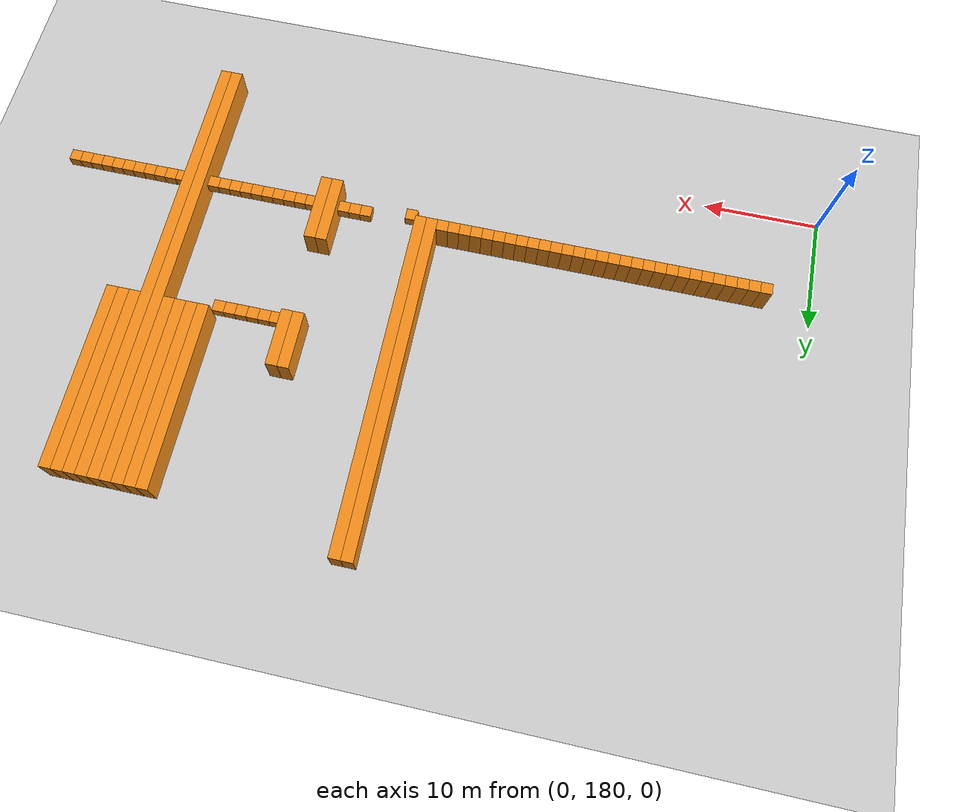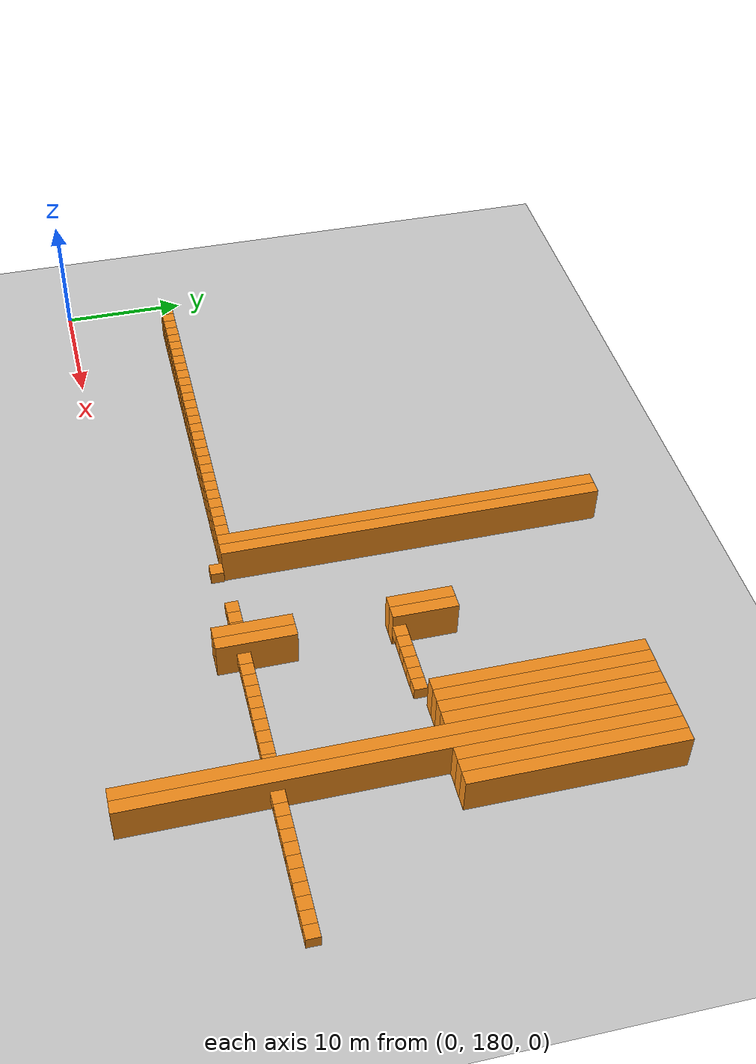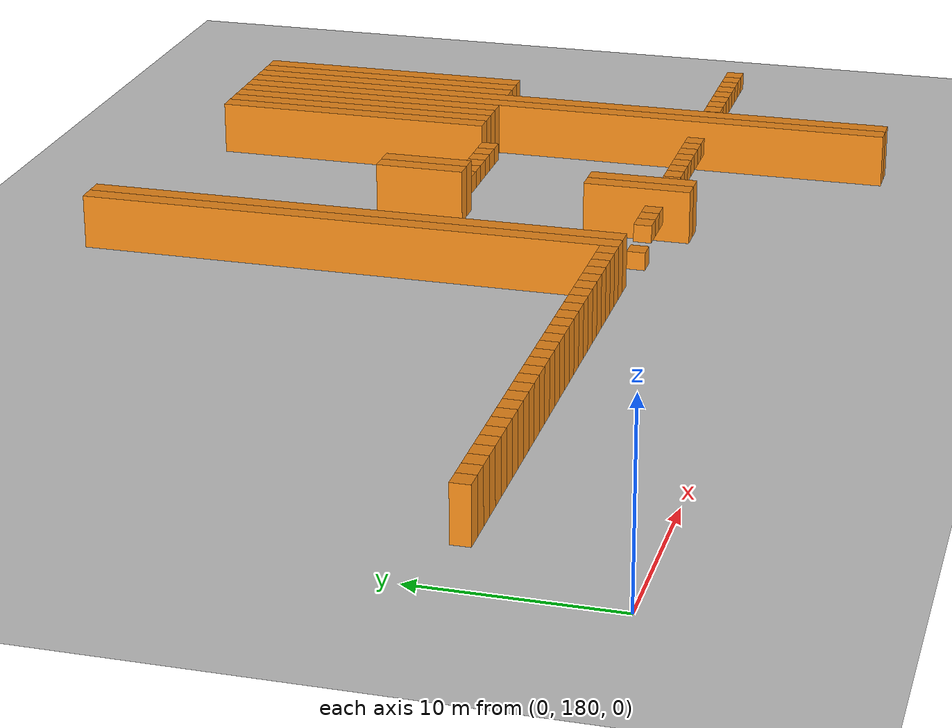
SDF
<sdf version="1.6">
 <world name="default">
  <include><uri>model://ground_plane</uri></include>
  <model name="unit_box_014">
   <pose>4.50   188.50     1.50 0 0 0</pose>
   <static>1</static>
   <link name="link">
    <inertial>
     <mass>5000</mass>
     <inertia><ixx>200</ixx><ixy>0</ixy><ixz>0</ixz><iyy>200</iyy><iyz>0</iyz><izz>200</izz></inertia>
    </inertial>
    <collision name="collision"><geometry><box><size>1 1 3</size></box></geometry></collision>
    <visual name="visual">
     <geometry><box><size>1 1 3</size></box></geometry>
     <material>
      <script><name>Gazebo/Orange</name><uri>file://media/materials/scripts/gazebo.material</uri></script>
     </material>
    </visual>
   </link>
  </model>
  <model name="unit_box_027">
   <pose>5.50   188.50     1.50 0 0 0</pose>
   <static>1</static>
   <link name="link">
    <inertial>
     <mass>5000</mass>
     <inertia><ixx>200</ixx><ixy>0</ixy><ixz>0</ixz><iyy>200</iyy><iyz>0</iyz><izz>200</izz></inertia>
    </inertial>
    <collision name="collision"><geometry><box><size>1 1 3</size></box></geometry></collision>
    <visual name="visual">
     <geometry><box><size>1 1 3</size></box></geometry>
     <material>
      <script><name>Gazebo/Orange</name><uri>file://media/materials/scripts/gazebo.material</uri></script>
     </material>
    </visual>
   </link>
  </model>
  <model name="unit_box_040">
   <pose>6.50   188.50     1.50 0 0 0</pose>
   <static>1</static>
   <link name="link">
    <inertial>
     <mass>5000</mass>
     <inertia><ixx>200</ixx><ixy>0</ixy><ixz>0</ixz><iyy>200</iyy><iyz>0</iyz><izz>200</izz></inertia>
    </inertial>
    <collision name="collision"><geometry><box><size>1 1 3</size></box></geometry></collision>
    <visual name="visual">
     <geometry><box><size>1 1 3</size></box></geometry>
     <material>
      <script><name>Gazebo/Orange</name><uri>file://media/materials/scripts/gazebo.material</uri></script>
     </material>
    </visual>
   </link>
  </model>
  <model name="unit_box_053">
   <pose>7.50   188.50     1.50 0 0 0</pose>
   <static>1</static>
   <link name="link">
    <inertial>
     <mass>5000</mass>
     <inertia><ixx>200</ixx><ixy>0</ixy><ixz>0</ixz><iyy>200</iyy><iyz>0</iyz><izz>200</izz></inertia>
    </inertial>
    <collision name="collision"><geometry><box><size>1 1 3</size></box></geometry></collision>
    <visual name="visual">
     <geometry><box><size>1 1 3</size></box></geometry>
     <material>
      <script><name>Gazebo/Orange</name><uri>file://media/materials/scripts/gazebo.material</uri></script>
     </material>
    </visual>
   </link>
  </model>
  <model name="unit_box_066">
   <pose>8.50   188.50     1.50 0 0 0</pose>
   <static>1</static>
   <link name="link">
    <inertial>
     <mass>5000</mass>
     <inertia><ixx>200</ixx><ixy>0</ixy><ixz>0</ixz><iyy>200</iyy><iyz>0</iyz><izz>200</izz></inertia>
    </inertial>
    <collision name="collision"><geometry><box><size>1 1 3</size></box></geometry></collision>
    <visual name="visual">
     <geometry><box><size>1 1 3</size></box></geometry>
     <material>
      <script><name>Gazebo/Orange</name><uri>file://media/materials/scripts/gazebo.material</uri></script>
     </material>
    </visual>
   </link>
  </model>
  <model name="unit_box_079">
   <pose>9.50   188.50     1.50 0 0 0</pose>
   <static>1</static>
   <link name="link">
    <inertial>
     <mass>5000</mass>
     <inertia><ixx>200</ixx><ixy>0</ixy><ixz>0</ixz><iyy>200</iyy><iyz>0</iyz><izz>200</izz></inertia>
    </inertial>
    <collision name="collision"><geometry><box><size>1 1 3</size></box></geometry></collision>
    <visual name="visual">
     <geometry><box><size>1 1 3</size></box></geometry>
     <material>
      <script><name>Gazebo/Orange</name><uri>file://media/materials/scripts/gazebo.material</uri></script>
     </material>
    </visual>
   </link>
  </model>
  <model name="unit_box_092">
   <pose>10.50   188.50     1.50 0 0 0</pose>
   <static>1</static>
   <link name="link">
    <inertial>
     <mass>5000</mass>
     <inertia><ixx>200</ixx><ixy>0</ixy><ixz>0</ixz><iyy>200</iyy><iyz>0</iyz><izz>200</izz></inertia>
    </inertial>
    <collision name="collision"><geometry><box><size>1 1 3</size></box></geometry></collision>
    <visual name="visual">
     <geometry><box><size>1 1 3</size></box></geometry>
     <material>
      <script><name>Gazebo/Orange</name><uri>file://media/materials/scripts/gazebo.material</uri></script>
     </material>
    </visual>
   </link>
  </model>
  <model name="unit_box_105">
   <pose>11.50   188.50     1.50 0 0 0</pose>
   <static>1</static>
   <link name="link">
    <inertial>
     <mass>5000</mass>
     <inertia><ixx>200</ixx><ixy>0</ixy><ixz>0</ixz><iyy>200</iyy><iyz>0</iyz><izz>200</izz></inertia>
    </inertial>
    <collision name="collision"><geometry><box><size>1 1 3</size></box></geometry></collision>
    <visual name="visual">
     <geometry><box><size>1 1 3</size></box></geometry>
     <material>
      <script><name>Gazebo/Orange</name><uri>file://media/materials/scripts/gazebo.material</uri></script>
     </material>
    </visual>
   </link>
  </model>
  <model name="unit_box_118">
   <pose>12.50   188.50     1.50 0 0 0</pose>
   <static>1</static>
   <link name="link">
    <inertial>
     <mass>5000</mass>
     <inertia><ixx>200</ixx><ixy>0</ixy><ixz>0</ixz><iyy>200</iyy><iyz>0</iyz><izz>200</izz></inertia>
    </inertial>
    <collision name="collision"><geometry><box><size>1 1 3</size></box></geometry></collision>
    <visual name="visual">
     <geometry><box><size>1 1 3</size></box></geometry>
     <material>
      <script><name>Gazebo/Orange</name><uri>file://media/materials/scripts/gazebo.material</uri></script>
     </material>
    </visual>
   </link>
  </model>
  <model name="unit_box_131">
   <pose>13.50   188.50     1.50 0 0 0</pose>
   <static>1</static>
   <link name="link">
    <inertial>
     <mass>5000</mass>
     <inertia><ixx>200</ixx><ixy>0</ixy><ixz>0</ixz><iyy>200</iyy><iyz>0</iyz><izz>200</izz></inertia>
    </inertial>
    <collision name="collision"><geometry><box><size>1 1 3</size></box></geometry></collision>
    <visual name="visual">
     <geometry><box><size>1 1 3</size></box></geometry>
     <material>
      <script><name>Gazebo/Orange</name><uri>file://media/materials/scripts/gazebo.material</uri></script>
     </material>
    </visual>
   </link>
  </model>
  <model name="unit_box_144">
   <pose>14.50   188.50     1.50 0 0 0</pose>
   <static>1</static>
   <link name="link">
    <inertial>
     <mass>5000</mass>
     <inertia><ixx>200</ixx><ixy>0</ixy><ixz>0</ixz><iyy>200</iyy><iyz>0</iyz><izz>200</izz></inertia>
    </inertial>
    <collision name="collision"><geometry><box><size>1 1 3</size></box></geometry></collision>
    <visual name="visual">
     <geometry><box><size>1 1 3</size></box></geometry>
     <material>
      <script><name>Gazebo/Orange</name><uri>file://media/materials/scripts/gazebo.material</uri></script>
     </material>
    </visual>
   </link>
  </model>
  <model name="unit_box_157">
   <pose>15.50   188.50     1.50 0 0 0</pose>
   <static>1</static>
   <link name="link">
    <inertial>
     <mass>5000</mass>
     <inertia><ixx>200</ixx><ixy>0</ixy><ixz>0</ixz><iyy>200</iyy><iyz>0</iyz><izz>200</izz></inertia>
    </inertial>
    <collision name="collision"><geometry><box><size>1 1 3</size></box></geometry></collision>
    <visual name="visual">
     <geometry><box><size>1 1 3</size></box></geometry>
     <material>
      <script><name>Gazebo/Orange</name><uri>file://media/materials/scripts/gazebo.material</uri></script>
     </material>
    </visual>
   </link>
  </model>
  <model name="unit_box_170">
   <pose>16.50   188.50     1.50 0 0 0</pose>
   <static>1</static>
   <link name="link">
    <inertial>
     <mass>5000</mass>
     <inertia><ixx>200</ixx><ixy>0</ixy><ixz>0</ixz><iyy>200</iyy><iyz>0</iyz><izz>200</izz></inertia>
    </inertial>
    <collision name="collision"><geometry><box><size>1 1 3</size></box></geometry></collision>
    <visual name="visual">
     <geometry><box><size>1 1 3</size></box></geometry>
     <material>
      <script><name>Gazebo/Orange</name><uri>file://media/materials/scripts/gazebo.material</uri></script>
     </material>
    </visual>
   </link>
  </model>
  <model name="unit_box_183">
   <pose>17.50   188.50     1.50 0 0 0</pose>
   <static>1</static>
   <link name="link">
    <inertial>
     <mass>5000</mass>
     <inertia><ixx>200</ixx><ixy>0</ixy><ixz>0</ixz><iyy>200</iyy><iyz>0</iyz><izz>200</izz></inertia>
    </inertial>
    <collision name="collision"><geometry><box><size>1 1 3</size></box></geometry></collision>
    <visual name="visual">
     <geometry><box><size>1 1 3</size></box></geometry>
     <material>
      <script><name>Gazebo/Orange</name><uri>file://media/materials/scripts/gazebo.material</uri></script>
     </material>
    </visual>
   </link>
  </model>
  <model name="unit_box_196">
   <pose>18.50   188.50     1.50 0 0 0</pose>
   <static>1</static>
   <link name="link">
    <inertial>
     <mass>5000</mass>
     <inertia><ixx>200</ixx><ixy>0</ixy><ixz>0</ixz><iyy>200</iyy><iyz>0</iyz><izz>200</izz></inertia>
    </inertial>
    <collision name="collision"><geometry><box><size>1 1 3</size></box></geometry></collision>
    <visual name="visual">
     <geometry><box><size>1 1 3</size></box></geometry>
     <material>
      <script><name>Gazebo/Orange</name><uri>file://media/materials/scripts/gazebo.material</uri></script>
     </material>
    </visual>
   </link>
  </model>
  <model name="unit_box_209">
   <pose>19.50   188.50     1.50 0 0 0</pose>
   <static>1</static>
   <link name="link">
    <inertial>
     <mass>5000</mass>
     <inertia><ixx>200</ixx><ixy>0</ixy><ixz>0</ixz><iyy>200</iyy><iyz>0</iyz><izz>200</izz></inertia>
    </inertial>
    <collision name="collision"><geometry><box><size>1 1 3</size></box></geometry></collision>
    <visual name="visual">
     <geometry><box><size>1 1 3</size></box></geometry>
     <material>
      <script><name>Gazebo/Orange</name><uri>file://media/materials/scripts/gazebo.material</uri></script>
     </material>
    </visual>
   </link>
  </model>
  <model name="unit_box_222">
   <pose>20.50   188.50     1.50 0 0 0</pose>
   <static>1</static>
   <link name="link">
    <inertial>
     <mass>5000</mass>
     <inertia><ixx>200</ixx><ixy>0</ixy><ixz>0</ixz><iyy>200</iyy><iyz>0</iyz><izz>200</izz></inertia>
    </inertial>
    <collision name="collision"><geometry><box><size>1 1 3</size></box></geometry></collision>
    <visual name="visual">
     <geometry><box><size>1 1 3</size></box></geometry>
     <material>
      <script><name>Gazebo/Orange</name><uri>file://media/materials/scripts/gazebo.material</uri></script>
     </material>
    </visual>
   </link>
  </model>
  <model name="unit_box_235">
   <pose>21.50   188.50     1.50 0 0 0</pose>
   <static>1</static>
   <link name="link">
    <inertial>
     <mass>5000</mass>
     <inertia><ixx>200</ixx><ixy>0</ixy><ixz>0</ixz><iyy>200</iyy><iyz>0</iyz><izz>200</izz></inertia>
    </inertial>
    <collision name="collision"><geometry><box><size>1 1 3</size></box></geometry></collision>
    <visual name="visual">
     <geometry><box><size>1 1 3</size></box></geometry>
     <material>
      <script><name>Gazebo/Orange</name><uri>file://media/materials/scripts/gazebo.material</uri></script>
     </material>
    </visual>
   </link>
  </model>
  <model name="unit_box_248">
   <pose>22.50   188.50     1.50 0 0 0</pose>
   <static>1</static>
   <link name="link">
    <inertial>
     <mass>5000</mass>
     <inertia><ixx>200</ixx><ixy>0</ixy><ixz>0</ixz><iyy>200</iyy><iyz>0</iyz><izz>200</izz></inertia>
    </inertial>
    <collision name="collision"><geometry><box><size>1 1 3</size></box></geometry></collision>
    <visual name="visual">
     <geometry><box><size>1 1 3</size></box></geometry>
     <material>
      <script><name>Gazebo/Orange</name><uri>file://media/materials/scripts/gazebo.material</uri></script>
     </material>
    </visual>
   </link>
  </model>
  <model name="unit_box_261">
   <pose>23.50   188.50     1.50 0 0 0</pose>
   <static>1</static>
   <link name="link">
    <inertial>
     <mass>5000</mass>
     <inertia><ixx>200</ixx><ixy>0</ixy><ixz>0</ixz><iyy>200</iyy><iyz>0</iyz><izz>200</izz></inertia>
    </inertial>
    <collision name="collision"><geometry><box><size>1 1 3</size></box></geometry></collision>
    <visual name="visual">
     <geometry><box><size>1 1 3</size></box></geometry>
     <material>
      <script><name>Gazebo/Orange</name><uri>file://media/materials/scripts/gazebo.material</uri></script>
     </material>
    </visual>
   </link>
  </model>
  <model name="unit_box_274">
   <pose>24.50   188.50     1.50 0 0 0</pose>
   <static>1</static>
   <link name="link">
    <inertial>
     <mass>5000</mass>
     <inertia><ixx>200</ixx><ixy>0</ixy><ixz>0</ixz><iyy>200</iyy><iyz>0</iyz><izz>200</izz></inertia>
    </inertial>
    <collision name="collision"><geometry><box><size>1 1 3</size></box></geometry></collision>
    <visual name="visual">
     <geometry><box><size>1 1 3</size></box></geometry>
     <material>
      <script><name>Gazebo/Orange</name><uri>file://media/materials/scripts/gazebo.material</uri></script>
     </material>
    </visual>
   </link>
  </model>
  <model name="unit_box_287">
   <pose>25.50   188.50     1.50 0 0 0</pose>
   <static>1</static>
   <link name="link">
    <inertial>
     <mass>5000</mass>
     <inertia><ixx>200</ixx><ixy>0</ixy><ixz>0</ixz><iyy>200</iyy><iyz>0</iyz><izz>200</izz></inertia>
    </inertial>
    <collision name="collision"><geometry><box><size>1 1 3</size></box></geometry></collision>
    <visual name="visual">
     <geometry><box><size>1 1 3</size></box></geometry>
     <material>
      <script><name>Gazebo/Orange</name><uri>file://media/materials/scripts/gazebo.material</uri></script>
     </material>
    </visual>
   </link>
  </model>
  <model name="unit_box_300">
   <pose>26.50   188.50     1.50 0 0 0</pose>
   <static>1</static>
   <link name="link">
    <inertial>
     <mass>5000</mass>
     <inertia><ixx>200</ixx><ixy>0</ixy><ixz>0</ixz><iyy>200</iyy><iyz>0</iyz><izz>200</izz></inertia>
    </inertial>
    <collision name="collision"><geometry><box><size>1 1 3</size></box></geometry></collision>
    <visual name="visual">
     <geometry><box><size>1 1 3</size></box></geometry>
     <material>
      <script><name>Gazebo/Orange</name><uri>file://media/materials/scripts/gazebo.material</uri></script>
     </material>
    </visual>
   </link>
  </model>
  <model name="unit_box_313">
   <pose>27.50   188.50     1.50 0 0 0</pose>
   <static>1</static>
   <link name="link">
    <inertial>
     <mass>5000</mass>
     <inertia><ixx>200</ixx><ixy>0</ixy><ixz>0</ixz><iyy>200</iyy><iyz>0</iyz><izz>200</izz></inertia>
    </inertial>
    <collision name="collision"><geometry><box><size>1 1 3</size></box></geometry></collision>
    <visual name="visual">
     <geometry><box><size>1 1 3</size></box></geometry>
     <material>
      <script><name>Gazebo/Orange</name><uri>file://media/materials/scripts/gazebo.material</uri></script>
     </material>
    </visual>
   </link>
  </model>
  <model name="unit_box_326">
   <pose>28.50   188.50     1.50 0 0 0</pose>
   <static>1</static>
   <link name="link">
    <inertial>
     <mass>5000</mass>
     <inertia><ixx>200</ixx><ixy>0</ixy><ixz>0</ixz><iyy>200</iyy><iyz>0</iyz><izz>200</izz></inertia>
    </inertial>
    <collision name="collision"><geometry><box><size>1 1 3</size></box></geometry></collision>
    <visual name="visual">
     <geometry><box><size>1 1 3</size></box></geometry>
     <material>
      <script><name>Gazebo/Orange</name><uri>file://media/materials/scripts/gazebo.material</uri></script>
     </material>
    </visual>
   </link>
  </model>
  <model name="unit_box_339">
   <pose>29.50   188.50     1.50 0 0 0</pose>
   <static>1</static>
   <link name="link">
    <inertial>
     <mass>5000</mass>
     <inertia><ixx>200</ixx><ixy>0</ixy><ixz>0</ixz><iyy>200</iyy><iyz>0</iyz><izz>200</izz></inertia>
    </inertial>
    <collision name="collision"><geometry><box><size>1 1 3</size></box></geometry></collision>
    <visual name="visual">
     <geometry><box><size>1 1 3</size></box></geometry>
     <material>
      <script><name>Gazebo/Orange</name><uri>file://media/materials/scripts/gazebo.material</uri></script>
     </material>
    </visual>
   </link>
  </model>
  <model name="unit_box_352">
   <pose>30.50   188.50     1.50 0 0 0</pose>
   <static>1</static>
   <link name="link">
    <inertial>
     <mass>5000</mass>
     <inertia><ixx>200</ixx><ixy>0</ixy><ixz>0</ixz><iyy>200</iyy><iyz>0</iyz><izz>200</izz></inertia>
    </inertial>
    <collision name="collision"><geometry><box><size>1 1 3</size></box></geometry></collision>
    <visual name="visual">
     <geometry><box><size>1 1 3</size></box></geometry>
     <material>
      <script><name>Gazebo/Orange</name><uri>file://media/materials/scripts/gazebo.material</uri></script>
     </material>
    </visual>
   </link>
  </model>
  <model name="unit_box_366">
   <pose>31.50   188.50     1.50 0 0 0</pose>
   <static>1</static>
   <link name="link">
    <inertial>
     <mass>5000</mass>
     <inertia><ixx>200</ixx><ixy>0</ixy><ixz>0</ixz><iyy>200</iyy><iyz>0</iyz><izz>200</izz></inertia>
    </inertial>
    <collision name="collision"><geometry><box><size>1 1 3</size></box></geometry></collision>
    <visual name="visual">
     <geometry><box><size>1 1 3</size></box></geometry>
     <material>
      <script><name>Gazebo/Orange</name><uri>file://media/materials/scripts/gazebo.material</uri></script>
     </material>
    </visual>
   </link>
  </model>
  <model name="unit_box_380">
   <pose>32.50   188.50     1.50 0 0 0</pose>
   <static>1</static>
   <link name="link">
    <inertial>
     <mass>5000</mass>
     <inertia><ixx>200</ixx><ixy>0</ixy><ixz>0</ixz><iyy>200</iyy><iyz>0</iyz><izz>200</izz></inertia>
    </inertial>
    <collision name="collision"><geometry><box><size>1 1 3</size></box></geometry></collision>
    <visual name="visual">
     <geometry><box><size>1 1 3</size></box></geometry>
     <material>
      <script><name>Gazebo/Orange</name><uri>file://media/materials/scripts/gazebo.material</uri></script>
     </material>
    </visual>
   </link>
  </model>
  <model name="unit_box_385">
   <pose>33.50   203.00     1.50 0 0 0</pose>
   <static>1</static>
   <link name="link">
    <inertial>
     <mass>5000</mass>
     <inertia><ixx>200</ixx><ixy>0</ixy><ixz>0</ixz><iyy>200</iyy><iyz>0</iyz><izz>200</izz></inertia>
    </inertial>
    <collision name="collision"><geometry><box><size>1 30 3</size></box></geometry></collision>
    <visual name="visual">
     <geometry><box><size>1 30 3</size></box></geometry>
     <material>
      <script><name>Gazebo/Orange</name><uri>file://media/materials/scripts/gazebo.material</uri></script>
     </material>
    </visual>
   </link>
  </model>
  <model name="unit_box_392">
   <pose>34.50   203.00     1.50 0 0 0</pose>
   <static>1</static>
   <link name="link">
    <inertial>
     <mass>5000</mass>
     <inertia><ixx>200</ixx><ixy>0</ixy><ixz>0</ixz><iyy>200</iyy><iyz>0</iyz><izz>200</izz></inertia>
    </inertial>
    <collision name="collision"><geometry><box><size>1 30 3</size></box></geometry></collision>
    <visual name="visual">
     <geometry><box><size>1 30 3</size></box></geometry>
     <material>
      <script><name>Gazebo/Orange</name><uri>file://media/materials/scripts/gazebo.material</uri></script>
     </material>
    </visual>
   </link>
  </model>
  <model name="unit_box_398">
   <pose>35.50   187.50     1.50 0 0 0</pose>
   <static>1</static>
   <link name="link">
    <inertial>
     <mass>5000</mass>
     <inertia><ixx>200</ixx><ixy>0</ixy><ixz>0</ixz><iyy>200</iyy><iyz>0</iyz><izz>200</izz></inertia>
    </inertial>
    <collision name="collision"><geometry><box><size>1 1 1</size></box></geometry></collision>
    <visual name="visual">
     <geometry><box><size>1 1 1</size></box></geometry>
     <material>
      <script><name>Gazebo/Orange</name><uri>file://media/materials/scripts/gazebo.material</uri></script>
     </material>
    </visual>
   </link>
  </model>
  <model name="unit_box_419">
   <pose>39.50   188.00     1.50 0 0 0</pose>
   <static>1</static>
   <link name="link">
    <inertial>
     <mass>5000</mass>
     <inertia><ixx>200</ixx><ixy>0</ixy><ixz>0</ixz><iyy>200</iyy><iyz>0</iyz><izz>200</izz></inertia>
    </inertial>
    <collision name="collision"><geometry><box><size>1 1 1</size></box></geometry></collision>
    <visual name="visual">
     <geometry><box><size>1 1 1</size></box></geometry>
     <material>
      <script><name>Gazebo/Orange</name><uri>file://media/materials/scripts/gazebo.material</uri></script>
     </material>
    </visual>
   </link>
  </model>
  <model name="unit_box_425">
   <pose>40.50   188.00     1.50 0 0 0</pose>
   <static>1</static>
   <link name="link">
    <inertial>
     <mass>5000</mass>
     <inertia><ixx>200</ixx><ixy>0</ixy><ixz>0</ixz><iyy>200</iyy><iyz>0</iyz><izz>200</izz></inertia>
    </inertial>
    <collision name="collision"><geometry><box><size>1 1 1</size></box></geometry></collision>
    <visual name="visual">
     <geometry><box><size>1 1 1</size></box></geometry>
     <material>
      <script><name>Gazebo/Orange</name><uri>file://media/materials/scripts/gazebo.material</uri></script>
     </material>
    </visual>
   </link>
  </model>
  <model name="unit_box_433">
   <pose>41.50   188.00     1.50 0 0 0</pose>
   <static>1</static>
   <link name="link">
    <inertial>
     <mass>5000</mass>
     <inertia><ixx>200</ixx><ixy>0</ixy><ixz>0</ixz><iyy>200</iyy><iyz>0</iyz><izz>200</izz></inertia>
    </inertial>
    <collision name="collision"><geometry><box><size>1 1 1</size></box></geometry></collision>
    <visual name="visual">
     <geometry><box><size>1 1 1</size></box></geometry>
     <material>
      <script><name>Gazebo/Orange</name><uri>file://media/materials/scripts/gazebo.material</uri></script>
     </material>
    </visual>
   </link>
  </model>
  <model name="unit_box_444">
   <pose>42.50   189.00     1.50 0 0 0</pose>
   <static>1</static>
   <link name="link">
    <inertial>
     <mass>5000</mass>
     <inertia><ixx>200</ixx><ixy>0</ixy><ixz>0</ixz><iyy>200</iyy><iyz>0</iyz><izz>200</izz></inertia>
    </inertial>
    <collision name="collision"><geometry><box><size>1 6 3</size></box></geometry></collision>
    <visual name="visual">
     <geometry><box><size>1 6 3</size></box></geometry>
     <material>
      <script><name>Gazebo/Orange</name><uri>file://media/materials/scripts/gazebo.material</uri></script>
     </material>
    </visual>
   </link>
  </model>
  <model name="unit_box_445">
   <pose>42.50   201.50     1.50 0 0 0</pose>
   <static>1</static>
   <link name="link">
    <inertial>
     <mass>5000</mass>
     <inertia><ixx>200</ixx><ixy>0</ixy><ixz>0</ixz><iyy>200</iyy><iyz>0</iyz><izz>200</izz></inertia>
    </inertial>
    <collision name="collision"><geometry><box><size>1 5 3</size></box></geometry></collision>
    <visual name="visual">
     <geometry><box><size>1 5 3</size></box></geometry>
     <material>
      <script><name>Gazebo/Orange</name><uri>file://media/materials/scripts/gazebo.material</uri></script>
     </material>
    </visual>
   </link>
  </model>
  <model name="unit_box_459">
   <pose>43.50   189.00     1.50 0 0 0</pose>
   <static>1</static>
   <link name="link">
    <inertial>
     <mass>5000</mass>
     <inertia><ixx>200</ixx><ixy>0</ixy><ixz>0</ixz><iyy>200</iyy><iyz>0</iyz><izz>200</izz></inertia>
    </inertial>
    <collision name="collision"><geometry><box><size>1 6 3</size></box></geometry></collision>
    <visual name="visual">
     <geometry><box><size>1 6 3</size></box></geometry>
     <material>
      <script><name>Gazebo/Orange</name><uri>file://media/materials/scripts/gazebo.material</uri></script>
     </material>
    </visual>
   </link>
  </model>
  <model name="unit_box_460">
   <pose>43.50   201.50     1.50 0 0 0</pose>
   <static>1</static>
   <link name="link">
    <inertial>
     <mass>5000</mass>
     <inertia><ixx>200</ixx><ixy>0</ixy><ixz>0</ixz><iyy>200</iyy><iyz>0</iyz><izz>200</izz></inertia>
    </inertial>
    <collision name="collision"><geometry><box><size>1 5 3</size></box></geometry></collision>
    <visual name="visual">
     <geometry><box><size>1 5 3</size></box></geometry>
     <material>
      <script><name>Gazebo/Orange</name><uri>file://media/materials/scripts/gazebo.material</uri></script>
     </material>
    </visual>
   </link>
  </model>
  <model name="unit_box_474">
   <pose>44.50   188.00     1.50 0 0 0</pose>
   <static>1</static>
   <link name="link">
    <inertial>
     <mass>5000</mass>
     <inertia><ixx>200</ixx><ixy>0</ixy><ixz>0</ixz><iyy>200</iyy><iyz>0</iyz><izz>200</izz></inertia>
    </inertial>
    <collision name="collision"><geometry><box><size>1 1 1</size></box></geometry></collision>
    <visual name="visual">
     <geometry><box><size>1 1 1</size></box></geometry>
     <material>
      <script><name>Gazebo/Orange</name><uri>file://media/materials/scripts/gazebo.material</uri></script>
     </material>
    </visual>
   </link>
  </model>
  <model name="unit_box_475">
   <pose>44.50   199.50     1.50 0 0 0</pose>
   <static>1</static>
   <link name="link">
    <inertial>
     <mass>5000</mass>
     <inertia><ixx>200</ixx><ixy>0</ixy><ixz>0</ixz><iyy>200</iyy><iyz>0</iyz><izz>200</izz></inertia>
    </inertial>
    <collision name="collision"><geometry><box><size>1 1 1</size></box></geometry></collision>
    <visual name="visual">
     <geometry><box><size>1 1 1</size></box></geometry>
     <material>
      <script><name>Gazebo/Orange</name><uri>file://media/materials/scripts/gazebo.material</uri></script>
     </material>
    </visual>
   </link>
  </model>
  <model name="unit_box_489">
   <pose>45.50   188.00     1.50 0 0 0</pose>
   <static>1</static>
   <link name="link">
    <inertial>
     <mass>5000</mass>
     <inertia><ixx>200</ixx><ixy>0</ixy><ixz>0</ixz><iyy>200</iyy><iyz>0</iyz><izz>200</izz></inertia>
    </inertial>
    <collision name="collision"><geometry><box><size>1 1 1</size></box></geometry></collision>
    <visual name="visual">
     <geometry><box><size>1 1 1</size></box></geometry>
     <material>
      <script><name>Gazebo/Orange</name><uri>file://media/materials/scripts/gazebo.material</uri></script>
     </material>
    </visual>
   </link>
  </model>
  <model name="unit_box_490">
   <pose>45.50   199.50     1.50 0 0 0</pose>
   <static>1</static>
   <link name="link">
    <inertial>
     <mass>5000</mass>
     <inertia><ixx>200</ixx><ixy>0</ixy><ixz>0</ixz><iyy>200</iyy><iyz>0</iyz><izz>200</izz></inertia>
    </inertial>
    <collision name="collision"><geometry><box><size>1 1 1</size></box></geometry></collision>
    <visual name="visual">
     <geometry><box><size>1 1 1</size></box></geometry>
     <material>
      <script><name>Gazebo/Orange</name><uri>file://media/materials/scripts/gazebo.material</uri></script>
     </material>
    </visual>
   </link>
  </model>
  <model name="unit_box_503">
   <pose>46.50   188.00     1.50 0 0 0</pose>
   <static>1</static>
   <link name="link">
    <inertial>
     <mass>5000</mass>
     <inertia><ixx>200</ixx><ixy>0</ixy><ixz>0</ixz><iyy>200</iyy><iyz>0</iyz><izz>200</izz></inertia>
    </inertial>
    <collision name="collision"><geometry><box><size>1 1 1</size></box></geometry></collision>
    <visual name="visual">
     <geometry><box><size>1 1 1</size></box></geometry>
     <material>
      <script><name>Gazebo/Orange</name><uri>file://media/materials/scripts/gazebo.material</uri></script>
     </material>
    </visual>
   </link>
  </model>
  <model name="unit_box_504">
   <pose>46.50   199.50     1.50 0 0 0</pose>
   <static>1</static>
   <link name="link">
    <inertial>
     <mass>5000</mass>
     <inertia><ixx>200</ixx><ixy>0</ixy><ixz>0</ixz><iyy>200</iyy><iyz>0</iyz><izz>200</izz></inertia>
    </inertial>
    <collision name="collision"><geometry><box><size>1 1 1</size></box></geometry></collision>
    <visual name="visual">
     <geometry><box><size>1 1 1</size></box></geometry>
     <material>
      <script><name>Gazebo/Orange</name><uri>file://media/materials/scripts/gazebo.material</uri></script>
     </material>
    </visual>
   </link>
  </model>
  <model name="unit_box_516">
   <pose>47.50   188.00     1.50 0 0 0</pose>
   <static>1</static>
   <link name="link">
    <inertial>
     <mass>5000</mass>
     <inertia><ixx>200</ixx><ixy>0</ixy><ixz>0</ixz><iyy>200</iyy><iyz>0</iyz><izz>200</izz></inertia>
    </inertial>
    <collision name="collision"><geometry><box><size>1 1 1</size></box></geometry></collision>
    <visual name="visual">
     <geometry><box><size>1 1 1</size></box></geometry>
     <material>
      <script><name>Gazebo/Orange</name><uri>file://media/materials/scripts/gazebo.material</uri></script>
     </material>
    </visual>
   </link>
  </model>
  <model name="unit_box_517">
   <pose>47.50   199.50     1.50 0 0 0</pose>
   <static>1</static>
   <link name="link">
    <inertial>
     <mass>5000</mass>
     <inertia><ixx>200</ixx><ixy>0</ixy><ixz>0</ixz><iyy>200</iyy><iyz>0</iyz><izz>200</izz></inertia>
    </inertial>
    <collision name="collision"><geometry><box><size>1 1 1</size></box></geometry></collision>
    <visual name="visual">
     <geometry><box><size>1 1 1</size></box></geometry>
     <material>
      <script><name>Gazebo/Orange</name><uri>file://media/materials/scripts/gazebo.material</uri></script>
     </material>
    </visual>
   </link>
  </model>
  <model name="unit_box_529">
   <pose>48.50   188.00     1.50 0 0 0</pose>
   <static>1</static>
   <link name="link">
    <inertial>
     <mass>5000</mass>
     <inertia><ixx>200</ixx><ixy>0</ixy><ixz>0</ixz><iyy>200</iyy><iyz>0</iyz><izz>200</izz></inertia>
    </inertial>
    <collision name="collision"><geometry><box><size>1 1 1</size></box></geometry></collision>
    <visual name="visual">
     <geometry><box><size>1 1 1</size></box></geometry>
     <material>
      <script><name>Gazebo/Orange</name><uri>file://media/materials/scripts/gazebo.material</uri></script>
     </material>
    </visual>
   </link>
  </model>
  <model name="unit_box_530">
   <pose>48.50   199.50     1.50 0 0 0</pose>
   <static>1</static>
   <link name="link">
    <inertial>
     <mass>5000</mass>
     <inertia><ixx>200</ixx><ixy>0</ixy><ixz>0</ixz><iyy>200</iyy><iyz>0</iyz><izz>200</izz></inertia>
    </inertial>
    <collision name="collision"><geometry><box><size>1 1 1</size></box></geometry></collision>
    <visual name="visual">
     <geometry><box><size>1 1 1</size></box></geometry>
     <material>
      <script><name>Gazebo/Orange</name><uri>file://media/materials/scripts/gazebo.material</uri></script>
     </material>
    </visual>
   </link>
  </model>
  <model name="unit_box_542">
   <pose>49.50   188.00     1.50 0 0 0</pose>
   <static>1</static>
   <link name="link">
    <inertial>
     <mass>5000</mass>
     <inertia><ixx>200</ixx><ixy>0</ixy><ixz>0</ixz><iyy>200</iyy><iyz>0</iyz><izz>200</izz></inertia>
    </inertial>
    <collision name="collision"><geometry><box><size>1 1 1</size></box></geometry></collision>
    <visual name="visual">
     <geometry><box><size>1 1 1</size></box></geometry>
     <material>
      <script><name>Gazebo/Orange</name><uri>file://media/materials/scripts/gazebo.material</uri></script>
     </material>
    </visual>
   </link>
  </model>
  <model name="unit_box_543">
   <pose>49.50   199.50     1.50 0 0 0</pose>
   <static>1</static>
   <link name="link">
    <inertial>
     <mass>5000</mass>
     <inertia><ixx>200</ixx><ixy>0</ixy><ixz>0</ixz><iyy>200</iyy><iyz>0</iyz><izz>200</izz></inertia>
    </inertial>
    <collision name="collision"><geometry><box><size>1 1 1</size></box></geometry></collision>
    <visual name="visual">
     <geometry><box><size>1 1 1</size></box></geometry>
     <material>
      <script><name>Gazebo/Orange</name><uri>file://media/materials/scripts/gazebo.material</uri></script>
     </material>
    </visual>
   </link>
  </model>
  <model name="unit_box_557">
   <pose>50.50   188.00     1.50 0 0 0</pose>
   <static>1</static>
   <link name="link">
    <inertial>
     <mass>5000</mass>
     <inertia><ixx>200</ixx><ixy>0</ixy><ixz>0</ixz><iyy>200</iyy><iyz>0</iyz><izz>200</izz></inertia>
    </inertial>
    <collision name="collision"><geometry><box><size>1 1 1</size></box></geometry></collision>
    <visual name="visual">
     <geometry><box><size>1 1 1</size></box></geometry>
     <material>
      <script><name>Gazebo/Orange</name><uri>file://media/materials/scripts/gazebo.material</uri></script>
     </material>
    </visual>
   </link>
  </model>
  <model name="unit_box_558">
   <pose>50.50   208.00     1.50 0 0 0</pose>
   <static>1</static>
   <link name="link">
    <inertial>
     <mass>5000</mass>
     <inertia><ixx>200</ixx><ixy>0</ixy><ixz>0</ixz><iyy>200</iyy><iyz>0</iyz><izz>200</izz></inertia>
    </inertial>
    <collision name="collision"><geometry><box><size>1 16 3</size></box></geometry></collision>
    <visual name="visual">
     <geometry><box><size>1 16 3</size></box></geometry>
     <material>
      <script><name>Gazebo/Orange</name><uri>file://media/materials/scripts/gazebo.material</uri></script>
     </material>
    </visual>
   </link>
  </model>
  <model name="unit_box_569">
   <pose>51.50   188.00     1.50 0 0 0</pose>
   <static>1</static>
   <link name="link">
    <inertial>
     <mass>5000</mass>
     <inertia><ixx>200</ixx><ixy>0</ixy><ixz>0</ixz><iyy>200</iyy><iyz>0</iyz><izz>200</izz></inertia>
    </inertial>
    <collision name="collision"><geometry><box><size>1 1 1</size></box></geometry></collision>
    <visual name="visual">
     <geometry><box><size>1 1 1</size></box></geometry>
     <material>
      <script><name>Gazebo/Orange</name><uri>file://media/materials/scripts/gazebo.material</uri></script>
     </material>
    </visual>
   </link>
  </model>
  <model name="unit_box_570">
   <pose>51.50   208.00     1.50 0 0 0</pose>
   <static>1</static>
   <link name="link">
    <inertial>
     <mass>5000</mass>
     <inertia><ixx>200</ixx><ixy>0</ixy><ixz>0</ixz><iyy>200</iyy><iyz>0</iyz><izz>200</izz></inertia>
    </inertial>
    <collision name="collision"><geometry><box><size>1 16 3</size></box></geometry></collision>
    <visual name="visual">
     <geometry><box><size>1 16 3</size></box></geometry>
     <material>
      <script><name>Gazebo/Orange</name><uri>file://media/materials/scripts/gazebo.material</uri></script>
     </material>
    </visual>
   </link>
  </model>
  <model name="unit_box_579">
   <pose>52.50   188.00     1.50 0 0 0</pose>
   <static>1</static>
   <link name="link">
    <inertial>
     <mass>5000</mass>
     <inertia><ixx>200</ixx><ixy>0</ixy><ixz>0</ixz><iyy>200</iyy><iyz>0</iyz><izz>200</izz></inertia>
    </inertial>
    <collision name="collision"><geometry><box><size>1 1 1</size></box></geometry></collision>
    <visual name="visual">
     <geometry><box><size>1 1 1</size></box></geometry>
     <material>
      <script><name>Gazebo/Orange</name><uri>file://media/materials/scripts/gazebo.material</uri></script>
     </material>
    </visual>
   </link>
  </model>
  <model name="unit_box_580">
   <pose>52.50   208.00     1.50 0 0 0</pose>
   <static>1</static>
   <link name="link">
    <inertial>
     <mass>5000</mass>
     <inertia><ixx>200</ixx><ixy>0</ixy><ixz>0</ixz><iyy>200</iyy><iyz>0</iyz><izz>200</izz></inertia>
    </inertial>
    <collision name="collision"><geometry><box><size>1 16 3</size></box></geometry></collision>
    <visual name="visual">
     <geometry><box><size>1 16 3</size></box></geometry>
     <material>
      <script><name>Gazebo/Orange</name><uri>file://media/materials/scripts/gazebo.material</uri></script>
     </material>
    </visual>
   </link>
  </model>
  <model name="unit_box_590">
   <pose>53.50   188.00     1.50 0 0 0</pose>
   <static>1</static>
   <link name="link">
    <inertial>
     <mass>5000</mass>
     <inertia><ixx>200</ixx><ixy>0</ixy><ixz>0</ixz><iyy>200</iyy><iyz>0</iyz><izz>200</izz></inertia>
    </inertial>
    <collision name="collision"><geometry><box><size>1 1 1</size></box></geometry></collision>
    <visual name="visual">
     <geometry><box><size>1 1 1</size></box></geometry>
     <material>
      <script><name>Gazebo/Orange</name><uri>file://media/materials/scripts/gazebo.material</uri></script>
     </material>
    </visual>
   </link>
  </model>
  <model name="unit_box_591">
   <pose>53.50   208.00     1.50 0 0 0</pose>
   <static>1</static>
   <link name="link">
    <inertial>
     <mass>5000</mass>
     <inertia><ixx>200</ixx><ixy>0</ixy><ixz>0</ixz><iyy>200</iyy><iyz>0</iyz><izz>200</izz></inertia>
    </inertial>
    <collision name="collision"><geometry><box><size>1 16 3</size></box></geometry></collision>
    <visual name="visual">
     <geometry><box><size>1 16 3</size></box></geometry>
     <material>
      <script><name>Gazebo/Orange</name><uri>file://media/materials/scripts/gazebo.material</uri></script>
     </material>
    </visual>
   </link>
  </model>
  <model name="unit_box_600">
   <pose>54.50   196.50     1.50 0 0 0</pose>
   <static>1</static>
   <link name="link">
    <inertial>
     <mass>5000</mass>
     <inertia><ixx>200</ixx><ixy>0</ixy><ixz>0</ixz><iyy>200</iyy><iyz>0</iyz><izz>200</izz></inertia>
    </inertial>
    <collision name="collision"><geometry><box><size>1 39 3</size></box></geometry></collision>
    <visual name="visual">
     <geometry><box><size>1 39 3</size></box></geometry>
     <material>
      <script><name>Gazebo/Orange</name><uri>file://media/materials/scripts/gazebo.material</uri></script>
     </material>
    </visual>
   </link>
  </model>
  <model name="unit_box_609">
   <pose>55.50   196.50     1.50 0 0 0</pose>
   <static>1</static>
   <link name="link">
    <inertial>
     <mass>5000</mass>
     <inertia><ixx>200</ixx><ixy>0</ixy><ixz>0</ixz><iyy>200</iyy><iyz>0</iyz><izz>200</izz></inertia>
    </inertial>
    <collision name="collision"><geometry><box><size>1 39 3</size></box></geometry></collision>
    <visual name="visual">
     <geometry><box><size>1 39 3</size></box></geometry>
     <material>
      <script><name>Gazebo/Orange</name><uri>file://media/materials/scripts/gazebo.material</uri></script>
     </material>
    </visual>
   </link>
  </model>
  <model name="unit_box_618">
   <pose>56.50   188.00     1.50 0 0 0</pose>
   <static>1</static>
   <link name="link">
    <inertial>
     <mass>5000</mass>
     <inertia><ixx>200</ixx><ixy>0</ixy><ixz>0</ixz><iyy>200</iyy><iyz>0</iyz><izz>200</izz></inertia>
    </inertial>
    <collision name="collision"><geometry><box><size>1 1 1</size></box></geometry></collision>
    <visual name="visual">
     <geometry><box><size>1 1 1</size></box></geometry>
     <material>
      <script><name>Gazebo/Orange</name><uri>file://media/materials/scripts/gazebo.material</uri></script>
     </material>
    </visual>
   </link>
  </model>
  <model name="unit_box_619">
   <pose>56.50   208.00     1.50 0 0 0</pose>
   <static>1</static>
   <link name="link">
    <inertial>
     <mass>5000</mass>
     <inertia><ixx>200</ixx><ixy>0</ixy><ixz>0</ixz><iyy>200</iyy><iyz>0</iyz><izz>200</izz></inertia>
    </inertial>
    <collision name="collision"><geometry><box><size>1 16 3</size></box></geometry></collision>
    <visual name="visual">
     <geometry><box><size>1 16 3</size></box></geometry>
     <material>
      <script><name>Gazebo/Orange</name><uri>file://media/materials/scripts/gazebo.material</uri></script>
     </material>
    </visual>
   </link>
  </model>
  <model name="unit_box_628">
   <pose>57.50   188.00     1.50 0 0 0</pose>
   <static>1</static>
   <link name="link">
    <inertial>
     <mass>5000</mass>
     <inertia><ixx>200</ixx><ixy>0</ixy><ixz>0</ixz><iyy>200</iyy><iyz>0</iyz><izz>200</izz></inertia>
    </inertial>
    <collision name="collision"><geometry><box><size>1 1 1</size></box></geometry></collision>
    <visual name="visual">
     <geometry><box><size>1 1 1</size></box></geometry>
     <material>
      <script><name>Gazebo/Orange</name><uri>file://media/materials/scripts/gazebo.material</uri></script>
     </material>
    </visual>
   </link>
  </model>
  <model name="unit_box_629">
   <pose>57.50   208.00     1.50 0 0 0</pose>
   <static>1</static>
   <link name="link">
    <inertial>
     <mass>5000</mass>
     <inertia><ixx>200</ixx><ixy>0</ixy><ixz>0</ixz><iyy>200</iyy><iyz>0</iyz><izz>200</izz></inertia>
    </inertial>
    <collision name="collision"><geometry><box><size>1 16 3</size></box></geometry></collision>
    <visual name="visual">
     <geometry><box><size>1 16 3</size></box></geometry>
     <material>
      <script><name>Gazebo/Orange</name><uri>file://media/materials/scripts/gazebo.material</uri></script>
     </material>
    </visual>
   </link>
  </model>
  <model name="unit_box_638">
   <pose>58.50   188.00     1.50 0 0 0</pose>
   <static>1</static>
   <link name="link">
    <inertial>
     <mass>5000</mass>
     <inertia><ixx>200</ixx><ixy>0</ixy><ixz>0</ixz><iyy>200</iyy><iyz>0</iyz><izz>200</izz></inertia>
    </inertial>
    <collision name="collision"><geometry><box><size>1 1 1</size></box></geometry></collision>
    <visual name="visual">
     <geometry><box><size>1 1 1</size></box></geometry>
     <material>
      <script><name>Gazebo/Orange</name><uri>file://media/materials/scripts/gazebo.material</uri></script>
     </material>
    </visual>
   </link>
  </model>
  <model name="unit_box_639">
   <pose>58.50   208.00     1.50 0 0 0</pose>
   <static>1</static>
   <link name="link">
    <inertial>
     <mass>5000</mass>
     <inertia><ixx>200</ixx><ixy>0</ixy><ixz>0</ixz><iyy>200</iyy><iyz>0</iyz><izz>200</izz></inertia>
    </inertial>
    <collision name="collision"><geometry><box><size>1 16 3</size></box></geometry></collision>
    <visual name="visual">
     <geometry><box><size>1 16 3</size></box></geometry>
     <material>
      <script><name>Gazebo/Orange</name><uri>file://media/materials/scripts/gazebo.material</uri></script>
     </material>
    </visual>
   </link>
  </model>
  <model name="unit_box_650">
   <pose>59.50   188.00     1.50 0 0 0</pose>
   <static>1</static>
   <link name="link">
    <inertial>
     <mass>5000</mass>
     <inertia><ixx>200</ixx><ixy>0</ixy><ixz>0</ixz><iyy>200</iyy><iyz>0</iyz><izz>200</izz></inertia>
    </inertial>
    <collision name="collision"><geometry><box><size>1 1 1</size></box></geometry></collision>
    <visual name="visual">
     <geometry><box><size>1 1 1</size></box></geometry>
     <material>
      <script><name>Gazebo/Orange</name><uri>file://media/materials/scripts/gazebo.material</uri></script>
     </material>
    </visual>
   </link>
  </model>
  <model name="unit_box_662">
   <pose>60.50   188.00     1.50 0 0 0</pose>
   <static>1</static>
   <link name="link">
    <inertial>
     <mass>5000</mass>
     <inertia><ixx>200</ixx><ixy>0</ixy><ixz>0</ixz><iyy>200</iyy><iyz>0</iyz><izz>200</izz></inertia>
    </inertial>
    <collision name="collision"><geometry><box><size>1 1 1</size></box></geometry></collision>
    <visual name="visual">
     <geometry><box><size>1 1 1</size></box></geometry>
     <material>
      <script><name>Gazebo/Orange</name><uri>file://media/materials/scripts/gazebo.material</uri></script>
     </material>
    </visual>
   </link>
  </model>
  <model name="unit_box_673">
   <pose>61.50   188.00     1.50 0 0 0</pose>
   <static>1</static>
   <link name="link">
    <inertial>
     <mass>5000</mass>
     <inertia><ixx>200</ixx><ixy>0</ixy><ixz>0</ixz><iyy>200</iyy><iyz>0</iyz><izz>200</izz></inertia>
    </inertial>
    <collision name="collision"><geometry><box><size>1 1 1</size></box></geometry></collision>
    <visual name="visual">
     <geometry><box><size>1 1 1</size></box></geometry>
     <material>
      <script><name>Gazebo/Orange</name><uri>file://media/materials/scripts/gazebo.material</uri></script>
     </material>
    </visual>
   </link>
  </model>
  <model name="unit_box_683">
   <pose>62.50   188.00     1.50 0 0 0</pose>
   <static>1</static>
   <link name="link">
    <inertial>
     <mass>5000</mass>
     <inertia><ixx>200</ixx><ixy>0</ixy><ixz>0</ixz><iyy>200</iyy><iyz>0</iyz><izz>200</izz></inertia>
    </inertial>
    <collision name="collision"><geometry><box><size>1 1 1</size></box></geometry></collision>
    <visual name="visual">
     <geometry><box><size>1 1 1</size></box></geometry>
     <material>
      <script><name>Gazebo/Orange</name><uri>file://media/materials/scripts/gazebo.material</uri></script>
     </material>
    </visual>
   </link>
  </model>
  <model name="unit_box_693">
   <pose>63.50   188.00     1.50 0 0 0</pose>
   <static>1</static>
   <link name="link">
    <inertial>
     <mass>5000</mass>
     <inertia><ixx>200</ixx><ixy>0</ixy><ixz>0</ixz><iyy>200</iyy><iyz>0</iyz><izz>200</izz></inertia>
    </inertial>
    <collision name="collision"><geometry><box><size>1 1 1</size></box></geometry></collision>
    <visual name="visual">
     <geometry><box><size>1 1 1</size></box></geometry>
     <material>
      <script><name>Gazebo/Orange</name><uri>file://media/materials/scripts/gazebo.material</uri></script>
     </material>
    </visual>
   </link>
  </model>
  <model name="unit_box_702">
   <pose>64.50   188.00     1.50 0 0 0</pose>
   <static>1</static>
   <link name="link">
    <inertial>
     <mass>5000</mass>
     <inertia><ixx>200</ixx><ixy>0</ixy><ixz>0</ixz><iyy>200</iyy><iyz>0</iyz><izz>200</izz></inertia>
    </inertial>
    <collision name="collision"><geometry><box><size>1 1 1</size></box></geometry></collision>
    <visual name="visual">
     <geometry><box><size>1 1 1</size></box></geometry>
     <material>
      <script><name>Gazebo/Orange</name><uri>file://media/materials/scripts/gazebo.material</uri></script>
     </material>
    </visual>
   </link>
  </model>
  <model name="unit_box_711">
   <pose>65.50   188.00     1.50 0 0 0</pose>
   <static>1</static>
   <link name="link">
    <inertial>
     <mass>5000</mass>
     <inertia><ixx>200</ixx><ixy>0</ixy><ixz>0</ixz><iyy>200</iyy><iyz>0</iyz><izz>200</izz></inertia>
    </inertial>
    <collision name="collision"><geometry><box><size>1 1 1</size></box></geometry></collision>
    <visual name="visual">
     <geometry><box><size>1 1 1</size></box></geometry>
     <material>
      <script><name>Gazebo/Orange</name><uri>file://media/materials/scripts/gazebo.material</uri></script>
     </material>
    </visual>
   </link>
  </model>
  <model name="unit_box_720">
   <pose>66.50   188.00     1.50 0 0 0</pose>
   <static>1</static>
   <link name="link">
    <inertial>
     <mass>5000</mass>
     <inertia><ixx>200</ixx><ixy>0</ixy><ixz>0</ixz><iyy>200</iyy><iyz>0</iyz><izz>200</izz></inertia>
    </inertial>
    <collision name="collision"><geometry><box><size>1 1 1</size></box></geometry></collision>
    <visual name="visual">
     <geometry><box><size>1 1 1</size></box></geometry>
     <material>
      <script><name>Gazebo/Orange</name><uri>file://media/materials/scripts/gazebo.material</uri></script>
     </material>
    </visual>
   </link>
  </model>
 </world>
</sdf>
